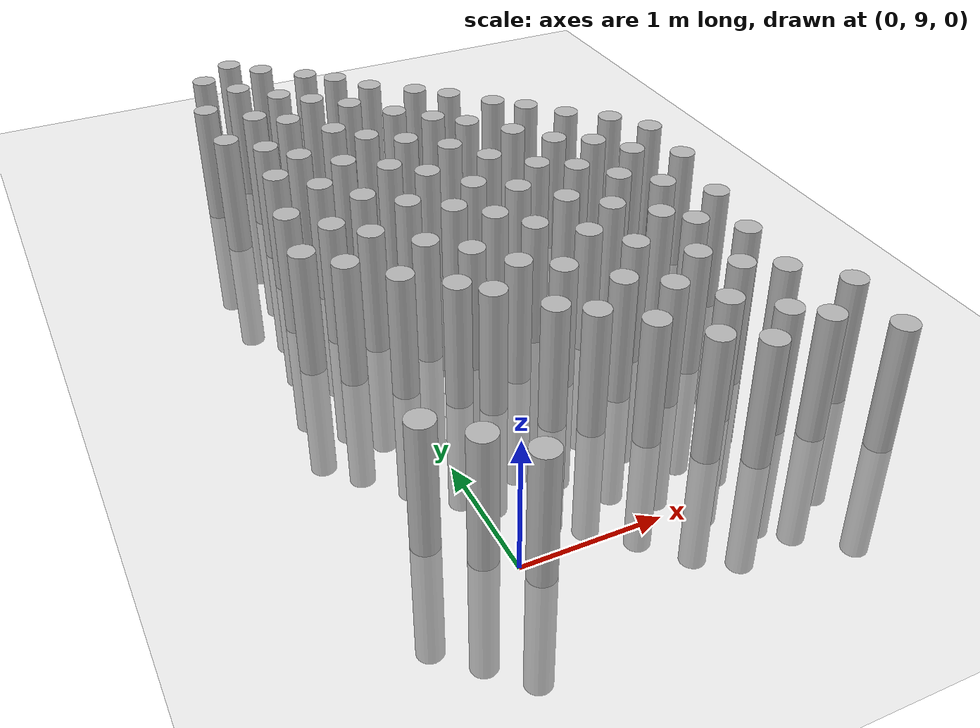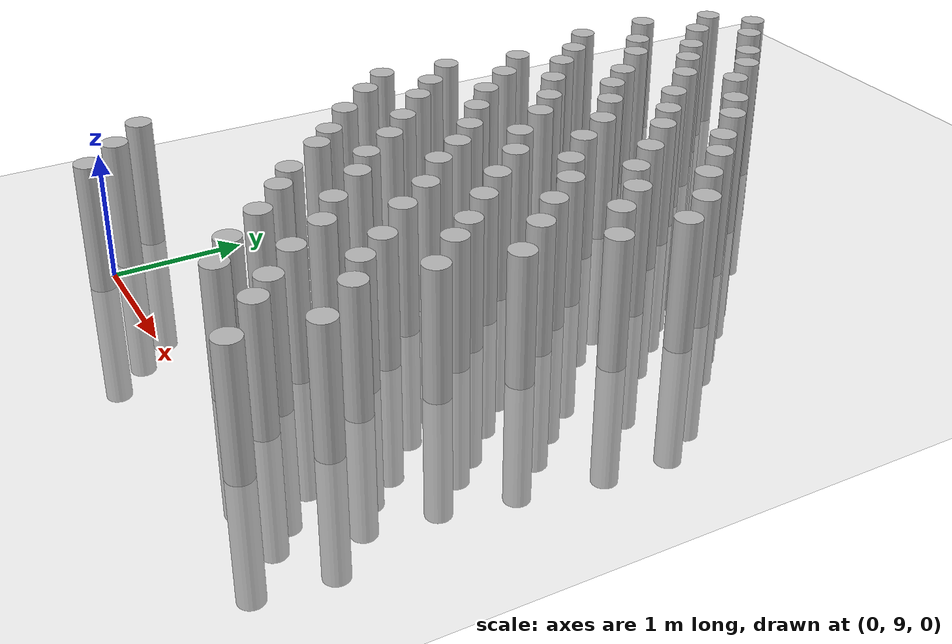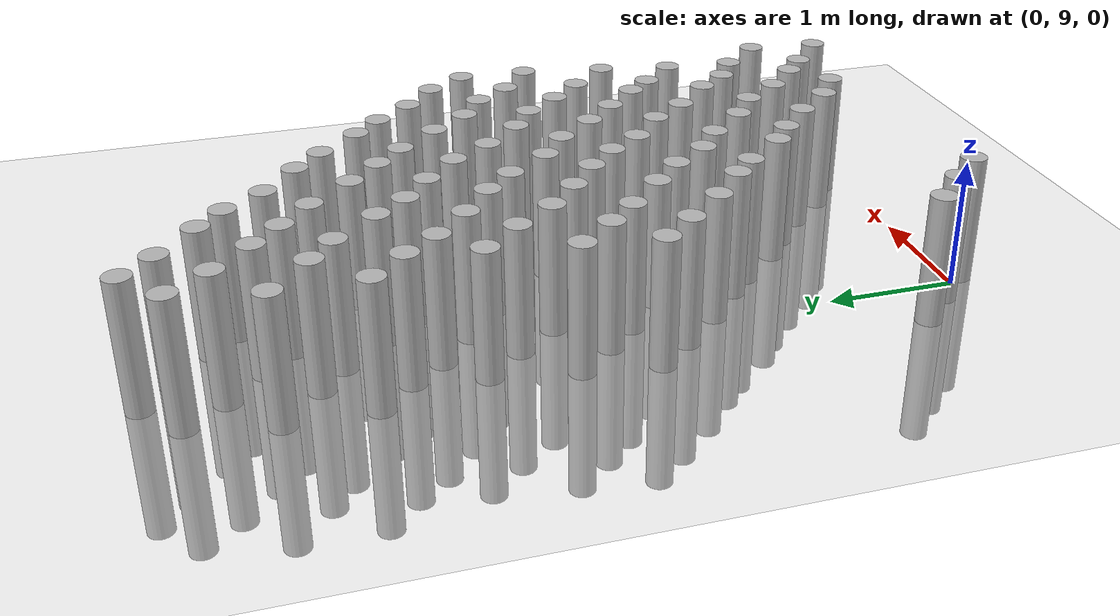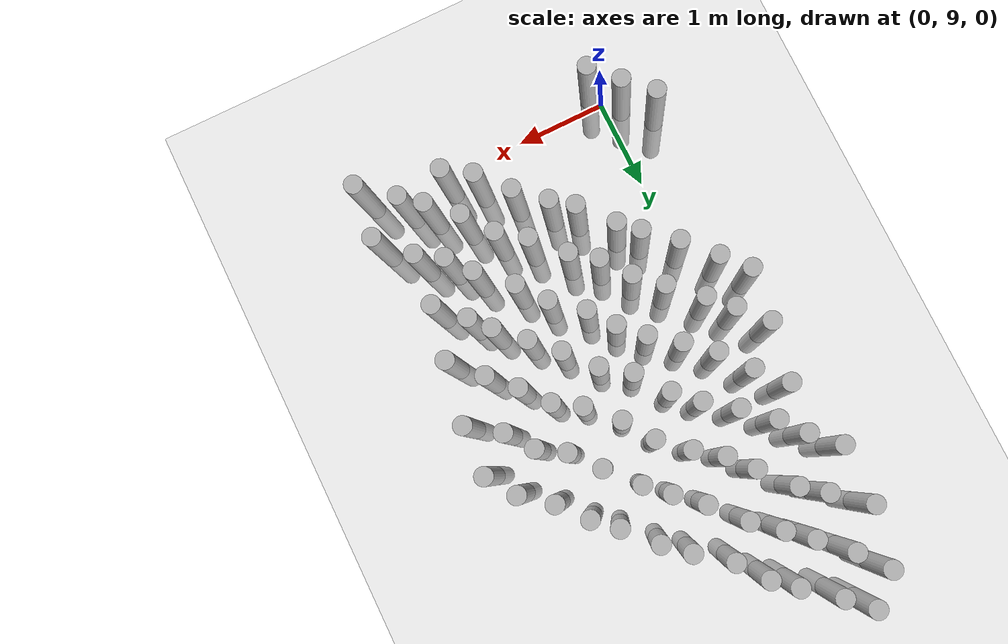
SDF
<sdf version="1.7">
 <world name="farmland_world">
  <model name="ground_plane">
   <static>1</static>
   <link name="link">
    <collision name="collision">
     <geometry><plane><normal>0 0 1</normal><size>40.0 40.0</size></plane></geometry>
     <surface><friction><ode><mu>100</mu><mu2>50</mu2></ode></friction></surface>
    </collision>
    <visual name="visual">
     <cast_shadows>0</cast_shadows>
     <geometry><plane><normal>0 0 1</normal><size>40.0 40.0</size></plane></geometry>
     <material>
      <script><uri>file://media/materials/scripts/gazebo.material</uri><name>Gazebo/Grey</name></script>
     </material>
    </visual>
   </link>
  </model>
  <model name="tree_2_107">
   <static>1</static>
   <link name="link">
    <collision name="collision">
     <geometry><cylinder><radius>0.1</radius><length>2.0</length></cylinder></geometry>
     <surface><friction><ode><mu>100</mu><mu2>50</mu2></ode></friction></surface>
    </collision>
    <visual name="visual">
     <geometry><cylinder><radius>0.1</radius><length>2.0</length></cylinder></geometry>
    </visual>
   </link>
   <pose>0.0950299192023964 8.89030359792413 0 0 0 0</pose>
  </model>
  <model name="tree_2_108">
   <static>1</static>
   <link name="link">
    <collision name="collision">
     <geometry><cylinder><radius>0.1</radius><length>2.0</length></cylinder></geometry>
     <surface><friction><ode><mu>100</mu><mu2>50</mu2></ode></friction></surface>
    </collision>
    <visual name="visual">
     <geometry><cylinder><radius>0.1</radius><length>2.0</length></cylinder></geometry>
    </visual>
   </link>
   <pose>-0.1633236135230289 9.164331218423401 0 0 0 0</pose>
  </model>
  <model name="tree_2_109">
   <static>1</static>
   <link name="link">
    <collision name="collision">
     <geometry><cylinder><radius>0.1</radius><length>2.0</length></cylinder></geometry>
     <surface><friction><ode><mu>100</mu><mu2>50</mu2></ode></friction></surface>
    </collision>
    <visual name="visual">
     <geometry><cylinder><radius>0.1</radius><length>2.0</length></cylinder></geometry>
    </visual>
   </link>
   <pose>-0.43501906018352693 9.429255284609784 0 0 0 0</pose>
  </model>
  <model name="tree_2_144">
   <static>1</static>
   <link name="link">
    <collision name="collision">
     <geometry><cylinder><radius>0.1</radius><length>2.0</length></cylinder></geometry>
     <surface><friction><ode><mu>100</mu><mu2>50</mu2></ode></friction></surface>
    </collision>
    <visual name="visual">
     <geometry><cylinder><radius>0.1</radius><length>2.0</length></cylinder></geometry>
    </visual>
   </link>
   <pose>1.8851052016961505 9.199806742886892 0 0 0 0</pose>
  </model>
  <model name="tree_2_145">
   <static>1</static>
   <link name="link">
    <collision name="collision">
     <geometry><cylinder><radius>0.1</radius><length>2.0</length></cylinder></geometry>
     <surface><friction><ode><mu>100</mu><mu2>50</mu2></ode></friction></surface>
    </collision>
    <visual name="visual">
     <geometry><cylinder><radius>0.1</radius><length>2.0</length></cylinder></geometry>
    </visual>
   </link>
   <pose>1.6055182438054836 9.388310378731886 0 0 0 0</pose>
  </model>
  <model name="tree_2_146">
   <static>1</static>
   <link name="link">
    <collision name="collision">
     <geometry><cylinder><radius>0.1</radius><length>2.0</length></cylinder></geometry>
     <surface><friction><ode><mu>100</mu><mu2>50</mu2></ode></friction></surface>
    </collision>
    <visual name="visual">
     <geometry><cylinder><radius>0.1</radius><length>2.0</length></cylinder></geometry>
    </visual>
   </link>
   <pose>1.333027229353501 9.703798494267796 0 0 0 0</pose>
  </model>
  <model name="tree_2_147">
   <static>1</static>
   <link name="link">
    <collision name="collision">
     <geometry><cylinder><radius>0.1</radius><length>2.0</length></cylinder></geometry>
     <surface><friction><ode><mu>100</mu><mu2>50</mu2></ode></friction></surface>
    </collision>
    <visual name="visual">
     <geometry><cylinder><radius>0.1</radius><length>2.0</length></cylinder></geometry>
    </visual>
   </link>
   <pose>1.045986551932278 9.967952140942803 0 0 0 0</pose>
  </model>
  <model name="tree_2_148">
   <static>1</static>
   <link name="link">
    <collision name="collision">
     <geometry><cylinder><radius>0.1</radius><length>2.0</length></cylinder></geometry>
     <surface><friction><ode><mu>100</mu><mu2>50</mu2></ode></friction></surface>
    </collision>
    <visual name="visual">
     <geometry><cylinder><radius>0.1</radius><length>2.0</length></cylinder></geometry>
    </visual>
   </link>
   <pose>0.8276361705215186 10.135384788795902 0 0 0 0</pose>
  </model>
  <model name="tree_2_149">
   <static>1</static>
   <link name="link">
    <collision name="collision">
     <geometry><cylinder><radius>0.1</radius><length>2.0</length></cylinder></geometry>
     <surface><friction><ode><mu>100</mu><mu2>50</mu2></ode></friction></surface>
    </collision>
    <visual name="visual">
     <geometry><cylinder><radius>0.1</radius><length>2.0</length></cylinder></geometry>
    </visual>
   </link>
   <pose>0.5381806693524269 10.47554505160377 0 0 0 0</pose>
  </model>
  <model name="tree_2_150">
   <static>1</static>
   <link name="link">
    <collision name="collision">
     <geometry><cylinder><radius>0.1</radius><length>2.0</length></cylinder></geometry>
     <surface><friction><ode><mu>100</mu><mu2>50</mu2></ode></friction></surface>
    </collision>
    <visual name="visual">
     <geometry><cylinder><radius>0.1</radius><length>2.0</length></cylinder></geometry>
    </visual>
   </link>
   <pose>0.3530503168953639 10.654055902187148 0 0 0 0</pose>
  </model>
  <model name="tree_2_151">
   <static>1</static>
   <link name="link">
    <collision name="collision">
     <geometry><cylinder><radius>0.1</radius><length>2.0</length></cylinder></geometry>
     <surface><friction><ode><mu>100</mu><mu2>50</mu2></ode></friction></surface>
    </collision>
    <visual name="visual">
     <geometry><cylinder><radius>0.1</radius><length>2.0</length></cylinder></geometry>
    </visual>
   </link>
   <pose>0.049643523496779696 10.919443722026804 0 0 0 0</pose>
  </model>
  <model name="tree_2_152">
   <static>1</static>
   <link name="link">
    <collision name="collision">
     <geometry><cylinder><radius>0.1</radius><length>2.0</length></cylinder></geometry>
     <surface><friction><ode><mu>100</mu><mu2>50</mu2></ode></friction></surface>
    </collision>
    <visual name="visual">
     <geometry><cylinder><radius>0.1</radius><length>2.0</length></cylinder></geometry>
    </visual>
   </link>
   <pose>-0.23371773141622587 11.22951689369589 0 0 0 0</pose>
  </model>
  <model name="tree_2_153">
   <static>1</static>
   <link name="link">
    <collision name="collision">
     <geometry><cylinder><radius>0.1</radius><length>2.0</length></cylinder></geometry>
     <surface><friction><ode><mu>100</mu><mu2>50</mu2></ode></friction></surface>
    </collision>
    <visual name="visual">
     <geometry><cylinder><radius>0.1</radius><length>2.0</length></cylinder></geometry>
    </visual>
   </link>
   <pose>-0.46319149923430775 11.487647839808073 0 0 0 0</pose>
  </model>
  <model name="tree_2_185">
   <static>1</static>
   <link name="link">
    <collision name="collision">
     <geometry><cylinder><radius>0.1</radius><length>2.0</length></cylinder></geometry>
     <surface><friction><ode><mu>100</mu><mu2>50</mu2></ode></friction></surface>
    </collision>
    <visual name="visual">
     <geometry><cylinder><radius>0.1</radius><length>2.0</length></cylinder></geometry>
    </visual>
   </link>
   <pose>2.550950543997511 10.412821149819699 0 0 0 0</pose>
  </model>
  <model name="tree_2_186">
   <static>1</static>
   <link name="link">
    <collision name="collision">
     <geometry><cylinder><radius>0.1</radius><length>2.0</length></cylinder></geometry>
     <surface><friction><ode><mu>100</mu><mu2>50</mu2></ode></friction></surface>
    </collision>
    <visual name="visual">
     <geometry><cylinder><radius>0.1</radius><length>2.0</length></cylinder></geometry>
    </visual>
   </link>
   <pose>2.285851596467608 10.690779299503273 0 0 0 0</pose>
  </model>
  <model name="tree_2_187">
   <static>1</static>
   <link name="link">
    <collision name="collision">
     <geometry><cylinder><radius>0.1</radius><length>2.0</length></cylinder></geometry>
     <surface><friction><ode><mu>100</mu><mu2>50</mu2></ode></friction></surface>
    </collision>
    <visual name="visual">
     <geometry><cylinder><radius>0.1</radius><length>2.0</length></cylinder></geometry>
    </visual>
   </link>
   <pose>2.113819184805206 10.8862139261879 0 0 0 0</pose>
  </model>
  <model name="tree_2_188">
   <static>1</static>
   <link name="link">
    <collision name="collision">
     <geometry><cylinder><radius>0.1</radius><length>2.0</length></cylinder></geometry>
     <surface><friction><ode><mu>100</mu><mu2>50</mu2></ode></friction></surface>
    </collision>
    <visual name="visual">
     <geometry><cylinder><radius>0.1</radius><length>2.0</length></cylinder></geometry>
    </visual>
   </link>
   <pose>1.8496946303920094 11.148205823215442 0 0 0 0</pose>
  </model>
  <model name="tree_2_189">
   <static>1</static>
   <link name="link">
    <collision name="collision">
     <geometry><cylinder><radius>0.1</radius><length>2.0</length></cylinder></geometry>
     <surface><friction><ode><mu>100</mu><mu2>50</mu2></ode></friction></surface>
    </collision>
    <visual name="visual">
     <geometry><cylinder><radius>0.1</radius><length>2.0</length></cylinder></geometry>
    </visual>
   </link>
   <pose>1.5970577985811474 11.398742123828407 0 0 0 0</pose>
  </model>
  <model name="tree_2_190">
   <static>1</static>
   <link name="link">
    <collision name="collision">
     <geometry><cylinder><radius>0.1</radius><length>2.0</length></cylinder></geometry>
     <surface><friction><ode><mu>100</mu><mu2>50</mu2></ode></friction></surface>
    </collision>
    <visual name="visual">
     <geometry><cylinder><radius>0.1</radius><length>2.0</length></cylinder></geometry>
    </visual>
   </link>
   <pose>1.3392555428481001 11.699506503849094 0 0 0 0</pose>
  </model>
  <model name="tree_2_191">
   <static>1</static>
   <link name="link">
    <collision name="collision">
     <geometry><cylinder><radius>0.1</radius><length>2.0</length></cylinder></geometry>
     <surface><friction><ode><mu>100</mu><mu2>50</mu2></ode></friction></surface>
    </collision>
    <visual name="visual">
     <geometry><cylinder><radius>0.1</radius><length>2.0</length></cylinder></geometry>
    </visual>
   </link>
   <pose>1.0568727918131129 11.90241340956041 0 0 0 0</pose>
  </model>
  <model name="tree_2_192">
   <static>1</static>
   <link name="link">
    <collision name="collision">
     <geometry><cylinder><radius>0.1</radius><length>2.0</length></cylinder></geometry>
     <surface><friction><ode><mu>100</mu><mu2>50</mu2></ode></friction></surface>
    </collision>
    <visual name="visual">
     <geometry><cylinder><radius>0.1</radius><length>2.0</length></cylinder></geometry>
    </visual>
   </link>
   <pose>0.8108667317964167 12.230265831814528 0 0 0 0</pose>
  </model>
  <model name="tree_2_193">
   <static>1</static>
   <link name="link">
    <collision name="collision">
     <geometry><cylinder><radius>0.1</radius><length>2.0</length></cylinder></geometry>
     <surface><friction><ode><mu>100</mu><mu2>50</mu2></ode></friction></surface>
    </collision>
    <visual name="visual">
     <geometry><cylinder><radius>0.1</radius><length>2.0</length></cylinder></geometry>
    </visual>
   </link>
   <pose>0.5803760566054132 12.45161852120102 0 0 0 0</pose>
  </model>
  <model name="tree_2_194">
   <static>1</static>
   <link name="link">
    <collision name="collision">
     <geometry><cylinder><radius>0.1</radius><length>2.0</length></cylinder></geometry>
     <surface><friction><ode><mu>100</mu><mu2>50</mu2></ode></friction></surface>
    </collision>
    <visual name="visual">
     <geometry><cylinder><radius>0.1</radius><length>2.0</length></cylinder></geometry>
    </visual>
   </link>
   <pose>0.2781333878884038 12.676830619798825 0 0 0 0</pose>
  </model>
  <model name="tree_2_195">
   <static>1</static>
   <link name="link">
    <collision name="collision">
     <geometry><cylinder><radius>0.1</radius><length>2.0</length></cylinder></geometry>
     <surface><friction><ode><mu>100</mu><mu2>50</mu2></ode></friction></surface>
    </collision>
    <visual name="visual">
     <geometry><cylinder><radius>0.1</radius><length>2.0</length></cylinder></geometry>
    </visual>
   </link>
   <pose>-0.0043243964412749275 12.935155124603192 0 0 0 0</pose>
  </model>
  <model name="tree_2_196">
   <static>1</static>
   <link name="link">
    <collision name="collision">
     <geometry><cylinder><radius>0.1</radius><length>2.0</length></cylinder></geometry>
     <surface><friction><ode><mu>100</mu><mu2>50</mu2></ode></friction></surface>
    </collision>
    <visual name="visual">
     <geometry><cylinder><radius>0.1</radius><length>2.0</length></cylinder></geometry>
    </visual>
   </link>
   <pose>-0.20616791726517214 13.18343592995435 0 0 0 0</pose>
  </model>
  <model name="tree_2_197">
   <static>1</static>
   <link name="link">
    <collision name="collision">
     <geometry><cylinder><radius>0.1</radius><length>2.0</length></cylinder></geometry>
     <surface><friction><ode><mu>100</mu><mu2>50</mu2></ode></friction></surface>
    </collision>
    <visual name="visual">
     <geometry><cylinder><radius>0.1</radius><length>2.0</length></cylinder></geometry>
    </visual>
   </link>
   <pose>-0.46165532350752997 13.439076232702373 0 0 0 0</pose>
  </model>
  <model name="tree_2_228">
   <static>1</static>
   <link name="link">
    <collision name="collision">
     <geometry><cylinder><radius>0.1</radius><length>2.0</length></cylinder></geometry>
     <surface><friction><ode><mu>100</mu><mu2>50</mu2></ode></friction></surface>
    </collision>
    <visual name="visual">
     <geometry><cylinder><radius>0.1</radius><length>2.0</length></cylinder></geometry>
    </visual>
   </link>
   <pose>2.806338879210166 12.16312767444614 0 0 0 0</pose>
  </model>
  <model name="tree_2_229">
   <static>1</static>
   <link name="link">
    <collision name="collision">
     <geometry><cylinder><radius>0.1</radius><length>2.0</length></cylinder></geometry>
     <surface><friction><ode><mu>100</mu><mu2>50</mu2></ode></friction></surface>
    </collision>
    <visual name="visual">
     <geometry><cylinder><radius>0.1</radius><length>2.0</length></cylinder></geometry>
    </visual>
   </link>
   <pose>2.598030951263027 12.466665126543669 0 0 0 0</pose>
  </model>
  <model name="tree_2_230">
   <static>1</static>
   <link name="link">
    <collision name="collision">
     <geometry><cylinder><radius>0.1</radius><length>2.0</length></cylinder></geometry>
     <surface><friction><ode><mu>100</mu><mu2>50</mu2></ode></friction></surface>
    </collision>
    <visual name="visual">
     <geometry><cylinder><radius>0.1</radius><length>2.0</length></cylinder></geometry>
    </visual>
   </link>
   <pose>2.305475924345371 12.708592183981185 0 0 0 0</pose>
  </model>
  <model name="tree_2_231">
   <static>1</static>
   <link name="link">
    <collision name="collision">
     <geometry><cylinder><radius>0.1</radius><length>2.0</length></cylinder></geometry>
     <surface><friction><ode><mu>100</mu><mu2>50</mu2></ode></friction></surface>
    </collision>
    <visual name="visual">
     <geometry><cylinder><radius>0.1</radius><length>2.0</length></cylinder></geometry>
    </visual>
   </link>
   <pose>2.0647022124616456 12.990269148501612 0 0 0 0</pose>
  </model>
  <model name="tree_2_232">
   <static>1</static>
   <link name="link">
    <collision name="collision">
     <geometry><cylinder><radius>0.1</radius><length>2.0</length></cylinder></geometry>
     <surface><friction><ode><mu>100</mu><mu2>50</mu2></ode></friction></surface>
    </collision>
    <visual name="visual">
     <geometry><cylinder><radius>0.1</radius><length>2.0</length></cylinder></geometry>
    </visual>
   </link>
   <pose>1.8440128698978957 13.193458699005463 0 0 0 0</pose>
  </model>
  <model name="tree_2_233">
   <static>1</static>
   <link name="link">
    <collision name="collision">
     <geometry><cylinder><radius>0.1</radius><length>2.0</length></cylinder></geometry>
     <surface><friction><ode><mu>100</mu><mu2>50</mu2></ode></friction></surface>
    </collision>
    <visual name="visual">
     <geometry><cylinder><radius>0.1</radius><length>2.0</length></cylinder></geometry>
    </visual>
   </link>
   <pose>1.561469032315554 13.501444025293512 0 0 0 0</pose>
  </model>
  <model name="tree_2_234">
   <static>1</static>
   <link name="link">
    <collision name="collision">
     <geometry><cylinder><radius>0.1</radius><length>2.0</length></cylinder></geometry>
     <surface><friction><ode><mu>100</mu><mu2>50</mu2></ode></friction></surface>
    </collision>
    <visual name="visual">
     <geometry><cylinder><radius>0.1</radius><length>2.0</length></cylinder></geometry>
    </visual>
   </link>
   <pose>1.3242374824179701 13.71516281076096 0 0 0 0</pose>
  </model>
  <model name="tree_2_235">
   <static>1</static>
   <link name="link">
    <collision name="collision">
     <geometry><cylinder><radius>0.1</radius><length>2.0</length></cylinder></geometry>
     <surface><friction><ode><mu>100</mu><mu2>50</mu2></ode></friction></surface>
    </collision>
    <visual name="visual">
     <geometry><cylinder><radius>0.1</radius><length>2.0</length></cylinder></geometry>
    </visual>
   </link>
   <pose>0.9930848464440006 13.973057007457912 0 0 0 0</pose>
  </model>
  <model name="tree_2_236">
   <static>1</static>
   <link name="link">
    <collision name="collision">
     <geometry><cylinder><radius>0.1</radius><length>2.0</length></cylinder></geometry>
     <surface><friction><ode><mu>100</mu><mu2>50</mu2></ode></friction></surface>
    </collision>
    <visual name="visual">
     <geometry><cylinder><radius>0.1</radius><length>2.0</length></cylinder></geometry>
    </visual>
   </link>
   <pose>0.7728703230878646 14.265282161208782 0 0 0 0</pose>
  </model>
  <model name="tree_2_237">
   <static>1</static>
   <link name="link">
    <collision name="collision">
     <geometry><cylinder><radius>0.1</radius><length>2.0</length></cylinder></geometry>
     <surface><friction><ode><mu>100</mu><mu2>50</mu2></ode></friction></surface>
    </collision>
    <visual name="visual">
     <geometry><cylinder><radius>0.1</radius><length>2.0</length></cylinder></geometry>
    </visual>
   </link>
   <pose>0.5529677000225548 14.45514535928722 0 0 0 0</pose>
  </model>
  <model name="tree_2_238">
   <static>1</static>
   <link name="link">
    <collision name="collision">
     <geometry><cylinder><radius>0.1</radius><length>2.0</length></cylinder></geometry>
     <surface><friction><ode><mu>100</mu><mu2>50</mu2></ode></friction></surface>
    </collision>
    <visual name="visual">
     <geometry><cylinder><radius>0.1</radius><length>2.0</length></cylinder></geometry>
    </visual>
   </link>
   <pose>0.21982285634238066 14.731316612340063 0 0 0 0</pose>
  </model>
  <model name="tree_2_239">
   <static>1</static>
   <link name="link">
    <collision name="collision">
     <geometry><cylinder><radius>0.1</radius><length>2.0</length></cylinder></geometry>
     <surface><friction><ode><mu>100</mu><mu2>50</mu2></ode></friction></surface>
    </collision>
    <visual name="visual">
     <geometry><cylinder><radius>0.1</radius><length>2.0</length></cylinder></geometry>
    </visual>
   </link>
   <pose>-0.014020281346654173 14.959219695533717 0 0 0 0</pose>
  </model>
  <model name="tree_2_422">
   <static>1</static>
   <link name="link">
    <collision name="collision">
     <geometry><cylinder><radius>0.1</radius><length>2.0</length></cylinder></geometry>
     <surface><friction><ode><mu>100</mu><mu2>50</mu2></ode></friction></surface>
    </collision>
    <visual name="visual">
     <geometry><cylinder><radius>0.1</radius><length>2.0</length></cylinder></geometry>
    </visual>
   </link>
   <pose>2.73345787772236 8.967939366880291 0 0 0 0</pose>
  </model>
  <model name="tree_2_423">
   <static>1</static>
   <link name="link">
    <collision name="collision">
     <geometry><cylinder><radius>0.1</radius><length>2.0</length></cylinder></geometry>
     <surface><friction><ode><mu>100</mu><mu2>50</mu2></ode></friction></surface>
    </collision>
    <visual name="visual">
     <geometry><cylinder><radius>0.1</radius><length>2.0</length></cylinder></geometry>
    </visual>
   </link>
   <pose>2.3880881273407693 9.263881904129867 0 0 0 0</pose>
  </model>
  <model name="tree_2_424">
   <static>1</static>
   <link name="link">
    <collision name="collision">
     <geometry><cylinder><radius>0.1</radius><length>2.0</length></cylinder></geometry>
     <surface><friction><ode><mu>100</mu><mu2>50</mu2></ode></friction></surface>
    </collision>
    <visual name="visual">
     <geometry><cylinder><radius>0.1</radius><length>2.0</length></cylinder></geometry>
    </visual>
   </link>
   <pose>2.1836857825028777 9.441360811381784 0 0 0 0</pose>
  </model>
  <model name="tree_2_425">
   <static>1</static>
   <link name="link">
    <collision name="collision">
     <geometry><cylinder><radius>0.1</radius><length>2.0</length></cylinder></geometry>
     <surface><friction><ode><mu>100</mu><mu2>50</mu2></ode></friction></surface>
    </collision>
    <visual name="visual">
     <geometry><cylinder><radius>0.1</radius><length>2.0</length></cylinder></geometry>
    </visual>
   </link>
   <pose>1.9022441872248805 9.710009198434426 0 0 0 0</pose>
  </model>
  <model name="tree_2_426">
   <static>1</static>
   <link name="link">
    <collision name="collision">
     <geometry><cylinder><radius>0.1</radius><length>2.0</length></cylinder></geometry>
     <surface><friction><ode><mu>100</mu><mu2>50</mu2></ode></friction></surface>
    </collision>
    <visual name="visual">
     <geometry><cylinder><radius>0.1</radius><length>2.0</length></cylinder></geometry>
    </visual>
   </link>
   <pose>1.6748493846105084 10.021950585532068 0 0 0 0</pose>
  </model>
  <model name="tree_2_427">
   <static>1</static>
   <link name="link">
    <collision name="collision">
     <geometry><cylinder><radius>0.1</radius><length>2.0</length></cylinder></geometry>
     <surface><friction><ode><mu>100</mu><mu2>50</mu2></ode></friction></surface>
    </collision>
    <visual name="visual">
     <geometry><cylinder><radius>0.1</radius><length>2.0</length></cylinder></geometry>
    </visual>
   </link>
   <pose>1.3987989896523771 10.22435841816421 0 0 0 0</pose>
  </model>
  <model name="tree_2_428">
   <static>1</static>
   <link name="link">
    <collision name="collision">
     <geometry><cylinder><radius>0.1</radius><length>2.0</length></cylinder></geometry>
     <surface><friction><ode><mu>100</mu><mu2>50</mu2></ode></friction></surface>
    </collision>
    <visual name="visual">
     <geometry><cylinder><radius>0.1</radius><length>2.0</length></cylinder></geometry>
    </visual>
   </link>
   <pose>1.1082319453679688 10.53997943667488 0 0 0 0</pose>
  </model>
  <model name="tree_2_429">
   <static>1</static>
   <link name="link">
    <collision name="collision">
     <geometry><cylinder><radius>0.1</radius><length>2.0</length></cylinder></geometry>
     <surface><friction><ode><mu>100</mu><mu2>50</mu2></ode></friction></surface>
    </collision>
    <visual name="visual">
     <geometry><cylinder><radius>0.1</radius><length>2.0</length></cylinder></geometry>
    </visual>
   </link>
   <pose>0.8534192823261878 10.729337310497069 0 0 0 0</pose>
  </model>
  <model name="tree_2_430">
   <static>1</static>
   <link name="link">
    <collision name="collision">
     <geometry><cylinder><radius>0.1</radius><length>2.0</length></cylinder></geometry>
     <surface><friction><ode><mu>100</mu><mu2>50</mu2></ode></friction></surface>
    </collision>
    <visual name="visual">
     <geometry><cylinder><radius>0.1</radius><length>2.0</length></cylinder></geometry>
    </visual>
   </link>
   <pose>0.6350101830450839 11.022184118178325 0 0 0 0</pose>
  </model>
  <model name="tree_2_431">
   <static>1</static>
   <link name="link">
    <collision name="collision">
     <geometry><cylinder><radius>0.1</radius><length>2.0</length></cylinder></geometry>
     <surface><friction><ode><mu>100</mu><mu2>50</mu2></ode></friction></surface>
    </collision>
    <visual name="visual">
     <geometry><cylinder><radius>0.1</radius><length>2.0</length></cylinder></geometry>
    </visual>
   </link>
   <pose>0.3807781086152795 11.258470303714725 0 0 0 0</pose>
  </model>
  <model name="tree_2_432">
   <static>1</static>
   <link name="link">
    <collision name="collision">
     <geometry><cylinder><radius>0.1</radius><length>2.0</length></cylinder></geometry>
     <surface><friction><ode><mu>100</mu><mu2>50</mu2></ode></friction></surface>
    </collision>
    <visual name="visual">
     <geometry><cylinder><radius>0.1</radius><length>2.0</length></cylinder></geometry>
    </visual>
   </link>
   <pose>0.07546268819870358 11.543413846321098 0 0 0 0</pose>
  </model>
  <model name="tree_2_433">
   <static>1</static>
   <link name="link">
    <collision name="collision">
     <geometry><cylinder><radius>0.1</radius><length>2.0</length></cylinder></geometry>
     <surface><friction><ode><mu>100</mu><mu2>50</mu2></ode></friction></surface>
    </collision>
    <visual name="visual">
     <geometry><cylinder><radius>0.1</radius><length>2.0</length></cylinder></geometry>
    </visual>
   </link>
   <pose>-0.14309263836190855 11.767703695059451 0 0 0 0</pose>
  </model>
  <model name="tree_2_434">
   <static>1</static>
   <link name="link">
    <collision name="collision">
     <geometry><cylinder><radius>0.1</radius><length>2.0</length></cylinder></geometry>
     <surface><friction><ode><mu>100</mu><mu2>50</mu2></ode></friction></surface>
    </collision>
    <visual name="visual">
     <geometry><cylinder><radius>0.1</radius><length>2.0</length></cylinder></geometry>
    </visual>
   </link>
   <pose>-0.3932099711467649 12.047006633030325 0 0 0 0</pose>
  </model>
  <model name="tree_2_463">
   <static>1</static>
   <link name="link">
    <collision name="collision">
     <geometry><cylinder><radius>0.1</radius><length>2.0</length></cylinder></geometry>
     <surface><friction><ode><mu>100</mu><mu2>50</mu2></ode></friction></surface>
    </collision>
    <visual name="visual">
     <geometry><cylinder><radius>0.1</radius><length>2.0</length></cylinder></geometry>
    </visual>
   </link>
   <pose>2.7930268204503217 9.536920989691112 0 0 0 0</pose>
  </model>
  <model name="tree_2_464">
   <static>1</static>
   <link name="link">
    <collision name="collision">
     <geometry><cylinder><radius>0.1</radius><length>2.0</length></cylinder></geometry>
     <surface><friction><ode><mu>100</mu><mu2>50</mu2></ode></friction></surface>
    </collision>
    <visual name="visual">
     <geometry><cylinder><radius>0.1</radius><length>2.0</length></cylinder></geometry>
    </visual>
   </link>
   <pose>2.4911644276581653 9.873419699208473 0 0 0 0</pose>
  </model>
  <model name="tree_2_465">
   <static>1</static>
   <link name="link">
    <collision name="collision">
     <geometry><cylinder><radius>0.1</radius><length>2.0</length></cylinder></geometry>
     <surface><friction><ode><mu>100</mu><mu2>50</mu2></ode></friction></surface>
    </collision>
    <visual name="visual">
     <geometry><cylinder><radius>0.1</radius><length>2.0</length></cylinder></geometry>
    </visual>
   </link>
   <pose>2.2316795774695684 10.041008467482733 0 0 0 0</pose>
  </model>
  <model name="tree_2_466">
   <static>1</static>
   <link name="link">
    <collision name="collision">
     <geometry><cylinder><radius>0.1</radius><length>2.0</length></cylinder></geometry>
     <surface><friction><ode><mu>100</mu><mu2>50</mu2></ode></friction></surface>
    </collision>
    <visual name="visual">
     <geometry><cylinder><radius>0.1</radius><length>2.0</length></cylinder></geometry>
    </visual>
   </link>
   <pose>2.037922132919228 10.289399831865252 0 0 0 0</pose>
  </model>
  <model name="tree_2_467">
   <static>1</static>
   <link name="link">
    <collision name="collision">
     <geometry><cylinder><radius>0.1</radius><length>2.0</length></cylinder></geometry>
     <surface><friction><ode><mu>100</mu><mu2>50</mu2></ode></friction></surface>
    </collision>
    <visual name="visual">
     <geometry><cylinder><radius>0.1</radius><length>2.0</length></cylinder></geometry>
    </visual>
   </link>
   <pose>1.7177520393972565 10.59453820343347 0 0 0 0</pose>
  </model>
  <model name="tree_2_468">
   <static>1</static>
   <link name="link">
    <collision name="collision">
     <geometry><cylinder><radius>0.1</radius><length>2.0</length></cylinder></geometry>
     <surface><friction><ode><mu>100</mu><mu2>50</mu2></ode></friction></surface>
    </collision>
    <visual name="visual">
     <geometry><cylinder><radius>0.1</radius><length>2.0</length></cylinder></geometry>
    </visual>
   </link>
   <pose>1.4992763739035466 10.881814738992576 0 0 0 0</pose>
  </model>
  <model name="tree_2_469">
   <static>1</static>
   <link name="link">
    <collision name="collision">
     <geometry><cylinder><radius>0.1</radius><length>2.0</length></cylinder></geometry>
     <surface><friction><ode><mu>100</mu><mu2>50</mu2></ode></friction></surface>
    </collision>
    <visual name="visual">
     <geometry><cylinder><radius>0.1</radius><length>2.0</length></cylinder></geometry>
    </visual>
   </link>
   <pose>1.1958792913168819 11.139992626946949 0 0 0 0</pose>
  </model>
  <model name="tree_2_470">
   <static>1</static>
   <link name="link">
    <collision name="collision">
     <geometry><cylinder><radius>0.1</radius><length>2.0</length></cylinder></geometry>
     <surface><friction><ode><mu>100</mu><mu2>50</mu2></ode></friction></surface>
    </collision>
    <visual name="visual">
     <geometry><cylinder><radius>0.1</radius><length>2.0</length></cylinder></geometry>
    </visual>
   </link>
   <pose>1.000098796440583 11.40212170545194 0 0 0 0</pose>
  </model>
  <model name="tree_2_471">
   <static>1</static>
   <link name="link">
    <collision name="collision">
     <geometry><cylinder><radius>0.1</radius><length>2.0</length></cylinder></geometry>
     <surface><friction><ode><mu>100</mu><mu2>50</mu2></ode></friction></surface>
    </collision>
    <visual name="visual">
     <geometry><cylinder><radius>0.1</radius><length>2.0</length></cylinder></geometry>
    </visual>
   </link>
   <pose>0.7700458227524188 11.63018546438028 0 0 0 0</pose>
  </model>
  <model name="tree_2_472">
   <static>1</static>
   <link name="link">
    <collision name="collision">
     <geometry><cylinder><radius>0.1</radius><length>2.0</length></cylinder></geometry>
     <surface><friction><ode><mu>100</mu><mu2>50</mu2></ode></friction></surface>
    </collision>
    <visual name="visual">
     <geometry><cylinder><radius>0.1</radius><length>2.0</length></cylinder></geometry>
    </visual>
   </link>
   <pose>0.4875450432198567 11.84816284404342 0 0 0 0</pose>
  </model>
  <model name="tree_2_473">
   <static>1</static>
   <link name="link">
    <collision name="collision">
     <geometry><cylinder><radius>0.1</radius><length>2.0</length></cylinder></geometry>
     <surface><friction><ode><mu>100</mu><mu2>50</mu2></ode></friction></surface>
    </collision>
    <visual name="visual">
     <geometry><cylinder><radius>0.1</radius><length>2.0</length></cylinder></geometry>
    </visual>
   </link>
   <pose>0.21759928800395995 12.083131864223068 0 0 0 0</pose>
  </model>
  <model name="tree_2_474">
   <static>1</static>
   <link name="link">
    <collision name="collision">
     <geometry><cylinder><radius>0.1</radius><length>2.0</length></cylinder></geometry>
     <surface><friction><ode><mu>100</mu><mu2>50</mu2></ode></friction></surface>
    </collision>
    <visual name="visual">
     <geometry><cylinder><radius>0.1</radius><length>2.0</length></cylinder></geometry>
    </visual>
   </link>
   <pose>-0.01888542846670259 12.387189659489083 0 0 0 0</pose>
  </model>
  <model name="tree_2_475">
   <static>1</static>
   <link name="link">
    <collision name="collision">
     <geometry><cylinder><radius>0.1</radius><length>2.0</length></cylinder></geometry>
     <surface><friction><ode><mu>100</mu><mu2>50</mu2></ode></friction></surface>
    </collision>
    <visual name="visual">
     <geometry><cylinder><radius>0.1</radius><length>2.0</length></cylinder></geometry>
    </visual>
   </link>
   <pose>-0.28130288616229104 12.670465267154471 0 0 0 0</pose>
  </model>
  <model name="tree_2_506">
   <static>1</static>
   <link name="link">
    <collision name="collision">
     <geometry><cylinder><radius>0.1</radius><length>2.0</length></cylinder></geometry>
     <surface><friction><ode><mu>100</mu><mu2>50</mu2></ode></friction></surface>
    </collision>
    <visual name="visual">
     <geometry><cylinder><radius>0.1</radius><length>2.0</length></cylinder></geometry>
    </visual>
   </link>
   <pose>2.661570806222363 10.974015612872105 0 0 0 0</pose>
  </model>
  <model name="tree_2_507">
   <static>1</static>
   <link name="link">
    <collision name="collision">
     <geometry><cylinder><radius>0.1</radius><length>2.0</length></cylinder></geometry>
     <surface><friction><ode><mu>100</mu><mu2>50</mu2></ode></friction></surface>
    </collision>
    <visual name="visual">
     <geometry><cylinder><radius>0.1</radius><length>2.0</length></cylinder></geometry>
    </visual>
   </link>
   <pose>2.377616247781052 11.283119576619823 0 0 0 0</pose>
  </model>
  <model name="tree_2_508">
   <static>1</static>
   <link name="link">
    <collision name="collision">
     <geometry><cylinder><radius>0.1</radius><length>2.0</length></cylinder></geometry>
     <surface><friction><ode><mu>100</mu><mu2>50</mu2></ode></friction></surface>
    </collision>
    <visual name="visual">
     <geometry><cylinder><radius>0.1</radius><length>2.0</length></cylinder></geometry>
    </visual>
   </link>
   <pose>2.1349768976756685 11.534363538917564 0 0 0 0</pose>
  </model>
  <model name="tree_2_509">
   <static>1</static>
   <link name="link">
    <collision name="collision">
     <geometry><cylinder><radius>0.1</radius><length>2.0</length></cylinder></geometry>
     <surface><friction><ode><mu>100</mu><mu2>50</mu2></ode></friction></surface>
    </collision>
    <visual name="visual">
     <geometry><cylinder><radius>0.1</radius><length>2.0</length></cylinder></geometry>
    </visual>
   </link>
   <pose>1.91341749299271 11.80930477118432 0 0 0 0</pose>
  </model>
  <model name="tree_2_510">
   <static>1</static>
   <link name="link">
    <collision name="collision">
     <geometry><cylinder><radius>0.1</radius><length>2.0</length></cylinder></geometry>
     <surface><friction><ode><mu>100</mu><mu2>50</mu2></ode></friction></surface>
    </collision>
    <visual name="visual">
     <geometry><cylinder><radius>0.1</radius><length>2.0</length></cylinder></geometry>
    </visual>
   </link>
   <pose>1.6471442422161844 11.979299044758154 0 0 0 0</pose>
  </model>
  <model name="tree_2_511">
   <static>1</static>
   <link name="link">
    <collision name="collision">
     <geometry><cylinder><radius>0.1</radius><length>2.0</length></cylinder></geometry>
     <surface><friction><ode><mu>100</mu><mu2>50</mu2></ode></friction></surface>
    </collision>
    <visual name="visual">
     <geometry><cylinder><radius>0.1</radius><length>2.0</length></cylinder></geometry>
    </visual>
   </link>
   <pose>1.3657587784092644 12.26982148343252 0 0 0 0</pose>
  </model>
  <model name="tree_2_512">
   <static>1</static>
   <link name="link">
    <collision name="collision">
     <geometry><cylinder><radius>0.1</radius><length>2.0</length></cylinder></geometry>
     <surface><friction><ode><mu>100</mu><mu2>50</mu2></ode></friction></surface>
    </collision>
    <visual name="visual">
     <geometry><cylinder><radius>0.1</radius><length>2.0</length></cylinder></geometry>
    </visual>
   </link>
   <pose>1.1575705452237472 12.576918556274117 0 0 0 0</pose>
  </model>
  <model name="tree_2_513">
   <static>1</static>
   <link name="link">
    <collision name="collision">
     <geometry><cylinder><radius>0.1</radius><length>2.0</length></cylinder></geometry>
     <surface><friction><ode><mu>100</mu><mu2>50</mu2></ode></friction></surface>
    </collision>
    <visual name="visual">
     <geometry><cylinder><radius>0.1</radius><length>2.0</length></cylinder></geometry>
    </visual>
   </link>
   <pose>0.8773052750389703 12.830984140062837 0 0 0 0</pose>
  </model>
  <model name="tree_2_514">
   <static>1</static>
   <link name="link">
    <collision name="collision">
     <geometry><cylinder><radius>0.1</radius><length>2.0</length></cylinder></geometry>
     <surface><friction><ode><mu>100</mu><mu2>50</mu2></ode></friction></surface>
    </collision>
    <visual name="visual">
     <geometry><cylinder><radius>0.1</radius><length>2.0</length></cylinder></geometry>
    </visual>
   </link>
   <pose>0.6091118695390155 13.032318038410763 0 0 0 0</pose>
  </model>
  <model name="tree_2_515">
   <static>1</static>
   <link name="link">
    <collision name="collision">
     <geometry><cylinder><radius>0.1</radius><length>2.0</length></cylinder></geometry>
     <surface><friction><ode><mu>100</mu><mu2>50</mu2></ode></friction></surface>
    </collision>
    <visual name="visual">
     <geometry><cylinder><radius>0.1</radius><length>2.0</length></cylinder></geometry>
    </visual>
   </link>
   <pose>0.4053484895300632 13.270093886826215 0 0 0 0</pose>
  </model>
  <model name="tree_2_516">
   <static>1</static>
   <link name="link">
    <collision name="collision">
     <geometry><cylinder><radius>0.1</radius><length>2.0</length></cylinder></geometry>
     <surface><friction><ode><mu>100</mu><mu2>50</mu2></ode></friction></surface>
    </collision>
    <visual name="visual">
     <geometry><cylinder><radius>0.1</radius><length>2.0</length></cylinder></geometry>
    </visual>
   </link>
   <pose>0.1177806372343105 13.599714635006064 0 0 0 0</pose>
  </model>
  <model name="tree_2_517">
   <static>1</static>
   <link name="link">
    <collision name="collision">
     <geometry><cylinder><radius>0.1</radius><length>2.0</length></cylinder></geometry>
     <surface><friction><ode><mu>100</mu><mu2>50</mu2></ode></friction></surface>
    </collision>
    <visual name="visual">
     <geometry><cylinder><radius>0.1</radius><length>2.0</length></cylinder></geometry>
    </visual>
   </link>
   <pose>-0.11866062467258462 13.783472534881856 0 0 0 0</pose>
  </model>
  <model name="tree_2_518">
   <static>1</static>
   <link name="link">
    <collision name="collision">
     <geometry><cylinder><radius>0.1</radius><length>2.0</length></cylinder></geometry>
     <surface><friction><ode><mu>100</mu><mu2>50</mu2></ode></friction></surface>
    </collision>
    <visual name="visual">
     <geometry><cylinder><radius>0.1</radius><length>2.0</length></cylinder></geometry>
    </visual>
   </link>
   <pose>-0.4614348078418022 14.077023593121865 0 0 0 0</pose>
  </model>
  <model name="tree_2_547">
   <static>1</static>
   <link name="link">
    <collision name="collision">
     <geometry><cylinder><radius>0.1</radius><length>2.0</length></cylinder></geometry>
     <surface><friction><ode><mu>100</mu><mu2>50</mu2></ode></friction></surface>
    </collision>
    <visual name="visual">
     <geometry><cylinder><radius>0.1</radius><length>2.0</length></cylinder></geometry>
    </visual>
   </link>
   <pose>2.7805178179567327 11.628180183646473 0 0 0 0</pose>
  </model>
  <model name="tree_2_548">
   <static>1</static>
   <link name="link">
    <collision name="collision">
     <geometry><cylinder><radius>0.1</radius><length>2.0</length></cylinder></geometry>
     <surface><friction><ode><mu>100</mu><mu2>50</mu2></ode></friction></surface>
    </collision>
    <visual name="visual">
     <geometry><cylinder><radius>0.1</radius><length>2.0</length></cylinder></geometry>
    </visual>
   </link>
   <pose>2.4562711128130474 11.866071174471614 0 0 0 0</pose>
  </model>
  <model name="tree_2_549">
   <static>1</static>
   <link name="link">
    <collision name="collision">
     <geometry><cylinder><radius>0.1</radius><length>2.0</length></cylinder></geometry>
     <surface><friction><ode><mu>100</mu><mu2>50</mu2></ode></friction></surface>
    </collision>
    <visual name="visual">
     <geometry><cylinder><radius>0.1</radius><length>2.0</length></cylinder></geometry>
    </visual>
   </link>
   <pose>2.2518538674161763 12.13944278478975 0 0 0 0</pose>
  </model>
  <model name="tree_2_550">
   <static>1</static>
   <link name="link">
    <collision name="collision">
     <geometry><cylinder><radius>0.1</radius><length>2.0</length></cylinder></geometry>
     <surface><friction><ode><mu>100</mu><mu2>50</mu2></ode></friction></surface>
    </collision>
    <visual name="visual">
     <geometry><cylinder><radius>0.1</radius><length>2.0</length></cylinder></geometry>
    </visual>
   </link>
   <pose>1.9799227610408998 12.315010956917092 0 0 0 0</pose>
  </model>
  <model name="tree_2_551">
   <static>1</static>
   <link name="link">
    <collision name="collision">
     <geometry><cylinder><radius>0.1</radius><length>2.0</length></cylinder></geometry>
     <surface><friction><ode><mu>100</mu><mu2>50</mu2></ode></friction></surface>
    </collision>
    <visual name="visual">
     <geometry><cylinder><radius>0.1</radius><length>2.0</length></cylinder></geometry>
    </visual>
   </link>
   <pose>1.7441605890271117 12.604301650713033 0 0 0 0</pose>
  </model>
  <model name="tree_2_552">
   <static>1</static>
   <link name="link">
    <collision name="collision">
     <geometry><cylinder><radius>0.1</radius><length>2.0</length></cylinder></geometry>
     <surface><friction><ode><mu>100</mu><mu2>50</mu2></ode></friction></surface>
    </collision>
    <visual name="visual">
     <geometry><cylinder><radius>0.1</radius><length>2.0</length></cylinder></geometry>
    </visual>
   </link>
   <pose>1.4677273412299814 12.916018529074314 0 0 0 0</pose>
  </model>
  <model name="tree_2_553">
   <static>1</static>
   <link name="link">
    <collision name="collision">
     <geometry><cylinder><radius>0.1</radius><length>2.0</length></cylinder></geometry>
     <surface><friction><ode><mu>100</mu><mu2>50</mu2></ode></friction></surface>
    </collision>
    <visual name="visual">
     <geometry><cylinder><radius>0.1</radius><length>2.0</length></cylinder></geometry>
    </visual>
   </link>
   <pose>1.2458541817400413 13.12589633947586 0 0 0 0</pose>
  </model>
  <model name="tree_2_554">
   <static>1</static>
   <link name="link">
    <collision name="collision">
     <geometry><cylinder><radius>0.1</radius><length>2.0</length></cylinder></geometry>
     <surface><friction><ode><mu>100</mu><mu2>50</mu2></ode></friction></surface>
    </collision>
    <visual name="visual">
     <geometry><cylinder><radius>0.1</radius><length>2.0</length></cylinder></geometry>
    </visual>
   </link>
   <pose>0.9886471067332425 13.364096902728994 0 0 0 0</pose>
  </model>
  <model name="tree_2_555">
   <static>1</static>
   <link name="link">
    <collision name="collision">
     <geometry><cylinder><radius>0.1</radius><length>2.0</length></cylinder></geometry>
     <surface><friction><ode><mu>100</mu><mu2>50</mu2></ode></friction></surface>
    </collision>
    <visual name="visual">
     <geometry><cylinder><radius>0.1</radius><length>2.0</length></cylinder></geometry>
    </visual>
   </link>
   <pose>0.6980291315187239 13.68569566778927 0 0 0 0</pose>
  </model>
  <model name="tree_2_556">
   <static>1</static>
   <link name="link">
    <collision name="collision">
     <geometry><cylinder><radius>0.1</radius><length>2.0</length></cylinder></geometry>
     <surface><friction><ode><mu>100</mu><mu2>50</mu2></ode></friction></surface>
    </collision>
    <visual name="visual">
     <geometry><cylinder><radius>0.1</radius><length>2.0</length></cylinder></geometry>
    </visual>
   </link>
   <pose>0.4328185020196285 13.913655345036434 0 0 0 0</pose>
  </model>
  <model name="tree_2_557">
   <static>1</static>
   <link name="link">
    <collision name="collision">
     <geometry><cylinder><radius>0.1</radius><length>2.0</length></cylinder></geometry>
     <surface><friction><ode><mu>100</mu><mu2>50</mu2></ode></friction></surface>
    </collision>
    <visual name="visual">
     <geometry><cylinder><radius>0.1</radius><length>2.0</length></cylinder></geometry>
    </visual>
   </link>
   <pose>0.19961604734072202 14.1221013572202 0 0 0 0</pose>
  </model>
  <model name="tree_2_558">
   <static>1</static>
   <link name="link">
    <collision name="collision">
     <geometry><cylinder><radius>0.1</radius><length>2.0</length></cylinder></geometry>
     <surface><friction><ode><mu>100</mu><mu2>50</mu2></ode></friction></surface>
    </collision>
    <visual name="visual">
     <geometry><cylinder><radius>0.1</radius><length>2.0</length></cylinder></geometry>
    </visual>
   </link>
   <pose>-0.0874356223895073 14.400358026482309 0 0 0 0</pose>
  </model>
  <model name="tree_2_559">
   <static>1</static>
   <link name="link">
    <collision name="collision">
     <geometry><cylinder><radius>0.1</radius><length>2.0</length></cylinder></geometry>
     <surface><friction><ode><mu>100</mu><mu2>50</mu2></ode></friction></surface>
    </collision>
    <visual name="visual">
     <geometry><cylinder><radius>0.1</radius><length>2.0</length></cylinder></geometry>
    </visual>
   </link>
   <pose>-0.3174195348896688 14.693277530475905 0 0 0 0</pose>
  </model>
 </world>
</sdf>
